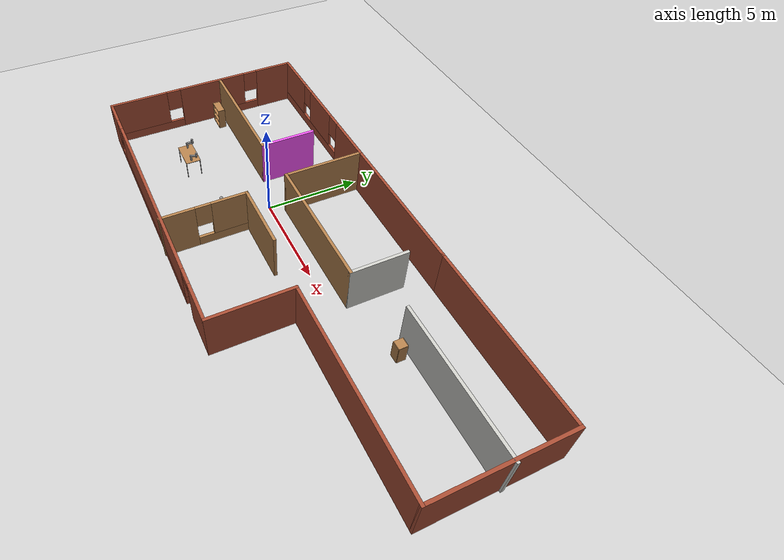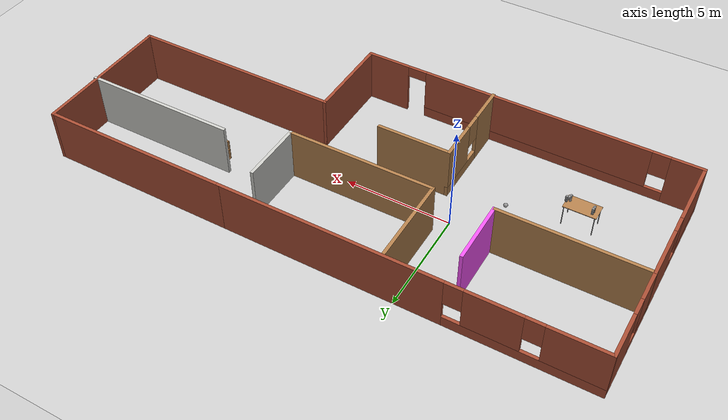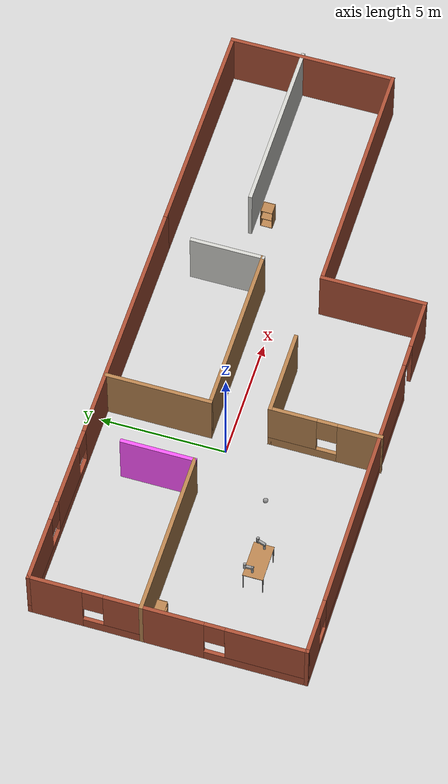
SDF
<sdf version="1.7">
 <world name="default">
  <light name="sun" type="directional">
   <pose>0 0 10 0 -0 0</pose>
   <diffuse>0.8 0.8 0.8 1</diffuse>
   <specular>0.2 0.2 0.2 1</specular>
   <attenuation>
    <range>1000</range>
    <constant>0.9</constant>
    <linear>0.01</linear>
    <quadratic>0.001</quadratic>
   </attenuation>
   <direction>-0.5 0.1 -0.9</direction>
   <spot><inner_angle>0</inner_angle><outer_angle>0</outer_angle><falloff>0</falloff></spot>
  </light>
  <model name="ground_plane">
   <static>1</static>
   <link name="link">
    <collision name="collision">
     <geometry><plane><normal>0 0 1</normal><size>100 100</size></plane></geometry>
     <surface>
      <contact><collide_bitmask>65535</collide_bitmask></contact>
      <friction><ode><mu>100</mu><mu2>50</mu2></ode></friction>
     </surface>
    </collision>
    <visual name="visual">
     <cast_shadows>0</cast_shadows>
     <geometry><plane><normal>0 0 1</normal><size>100 100</size></plane></geometry>
     <material>
      <script><uri>file://media/materials/scripts/gazebo.material</uri><name>Gazebo/Grey</name></script>
     </material>
    </visual>
   </link>
  </model>
  <gravity>0 0 -9.8</gravity>
  <magnetic_field>6e-06 2.3e-05 -4.2e-05</magnetic_field>
  <atmosphere type="adiabatic"/>
  <physics name="default_physics" default="0" type="ode">
   <max_step_size>0.001</max_step_size>
   <real_time_factor>1</real_time_factor>
   <real_time_update_rate>1000</real_time_update_rate>
  </physics>
  <scene><ambient>0.4 0.4 0.4 1</ambient><background>0.7 0.7 0.7 1</background><shadows>1</shadows></scene>
  <spherical_coordinates>
   <surface_model>EARTH_WGS84</surface_model>
   <latitude_deg>0</latitude_deg>
   <longitude_deg>0</longitude_deg>
   <elevation>0</elevation>
   <heading_deg>0</heading_deg>
  </spherical_coordinates>
  <model name="homeSmall_0">
   <pose>4.19429 -0.440898 0 0 -0 0</pose>
   <link name="Wall_24">
    <pose>-12.893 -2.14873 0 0 0 -1.5708</pose>
    <visual name="Wall_24_Visual_0">
     <pose>-2.00535 0 1.25 0 -0 0</pose>
     <geometry><box><size>2.4893 0.15 2.5</size></box></geometry>
     <material>
      <script><uri>file://media/materials/scripts/gazebo.material</uri><name>Gazebo/Bricks</name></script>
      <ambient>1 1 1 1</ambient>
     </material>
     <meta><layer>0</layer></meta>
    </visual>
    <collision name="Wall_24_Collision_0">
     <geometry><box><size>2.4893 0.15 2.5</size></box></geometry>
     <pose>-2.00535 0 1.25 0 -0 0</pose>
    </collision>
    <visual name="Wall_24_Visual_1">
     <pose>1.24465 0 0.25 0 -0 0</pose>
     <geometry><box><size>4.0107 0.15 0.5</size></box></geometry>
     <material>
      <script><uri>file://media/materials/scripts/gazebo.material</uri><name>Gazebo/Bricks</name></script>
      <ambient>1 1 1 1</ambient>
     </material>
     <meta><layer>0</layer></meta>
    </visual>
    <collision name="Wall_24_Collision_1">
     <geometry><box><size>4.0107 0.15 0.5</size></box></geometry>
     <pose>1.24465 0 0.25 0 -0 0</pose>
    </collision>
    <visual name="Wall_24_Visual_2">
     <pose>1.64465 0 1.5 0 -0 0</pose>
     <geometry><box><size>3.2107 0.15 2</size></box></geometry>
     <material>
      <script><uri>file://media/materials/scripts/gazebo.material</uri><name>Gazebo/Bricks</name></script>
      <ambient>1 1 1 1</ambient>
     </material>
     <meta><layer>0</layer></meta>
    </visual>
    <collision name="Wall_24_Collision_2">
     <geometry><box><size>3.2107 0.15 2</size></box></geometry>
     <pose>1.64465 0 1.5 0 -0 0</pose>
    </collision>
    <visual name="Wall_24_Visual_3">
     <pose>-0.360699 0 1.9 0 -0 0</pose>
     <geometry><box><size>0.8 0.15 1.2</size></box></geometry>
     <material>
      <script><uri>file://media/materials/scripts/gazebo.material</uri><name>Gazebo/Bricks</name></script>
      <ambient>1 1 1 1</ambient>
     </material>
     <meta><layer>0</layer></meta>
    </visual>
    <collision name="Wall_24_Collision_3">
     <geometry><box><size>0.8 0.15 1.2</size></box></geometry>
     <pose>-0.360699 0 1.9 0 -0 0</pose>
    </collision>
   </link>
   <link name="Wall_25">
    <pose>-4.96802 -5.32373 0 0 -0 0</pose>
    <visual name="Wall_25_Visual_0">
     <pose>-7.24785 0 1.25 0 -0 0</pose>
     <geometry><box><size>1.50429 0.15 2.5</size></box></geometry>
     <material>
      <script><uri>file://media/materials/scripts/gazebo.material</uri><name>Gazebo/Bricks</name></script>
      <ambient>1 1 1 1</ambient>
     </material>
     <meta><layer>0</layer></meta>
    </visual>
    <collision name="Wall_25_Collision_0">
     <geometry><box><size>1.50429 0.15 2.5</size></box></geometry>
     <pose>-7.24785 0 1.25 0 -0 0</pose>
    </collision>
    <visual name="Wall_25_Visual_1">
     <pose>6.94646 0 1.25 0 -0 0</pose>
     <geometry><box><size>2.10707 0.15 2.5</size></box></geometry>
     <material>
      <script><uri>file://media/materials/scripts/gazebo.material</uri><name>Gazebo/Bricks</name></script>
      <ambient>1 1 1 1</ambient>
     </material>
     <meta><layer>0</layer></meta>
    </visual>
    <collision name="Wall_25_Collision_1">
     <geometry><box><size>2.10707 0.15 2.5</size></box></geometry>
     <pose>6.94646 0 1.25 0 -0 0</pose>
    </collision>
    <visual name="Wall_25_Visual_2">
     <pose>-0.751388 0 0.25 0 -0 0</pose>
     <geometry><box><size>11.4886 0.15 0.5</size></box></geometry>
     <material>
      <script><uri>file://media/materials/scripts/gazebo.material</uri><name>Gazebo/Bricks</name></script>
      <ambient>1 1 1 1</ambient>
     </material>
     <meta><layer>0</layer></meta>
    </visual>
    <collision name="Wall_25_Collision_2">
     <geometry><box><size>11.4886 0.15 0.5</size></box></geometry>
     <pose>-0.751388 0 0.25 0 -0 0</pose>
    </collision>
    <visual name="Wall_25_Visual_3">
     <pose>-0.351388 0 1.5 0 -0 0</pose>
     <geometry><box><size>10.6886 0.15 2</size></box></geometry>
     <material>
      <script><uri>file://media/materials/scripts/gazebo.material</uri><name>Gazebo/Bricks</name></script>
      <ambient>1 1 1 1</ambient>
     </material>
     <meta><layer>0</layer></meta>
    </visual>
    <collision name="Wall_25_Collision_3">
     <geometry><box><size>10.6886 0.15 2</size></box></geometry>
     <pose>-0.351388 0 1.5 0 -0 0</pose>
    </collision>
    <visual name="Wall_25_Visual_4">
     <pose>-6.0957 0 1.9 0 -0 0</pose>
     <geometry><box><size>0.8 0.15 1.2</size></box></geometry>
     <material>
      <script><uri>file://media/materials/scripts/gazebo.material</uri><name>Gazebo/Bricks</name></script>
      <ambient>1 1 1 1</ambient>
     </material>
     <meta><layer>0</layer></meta>
    </visual>
    <collision name="Wall_25_Collision_4">
     <geometry><box><size>0.8 0.15 1.2</size></box></geometry>
     <pose>-6.0957 0 1.9 0 -0 0</pose>
    </collision>
    <visual name="Wall_25_Visual_5">
     <pose>5.44293 0 2.25 0 -0 0</pose>
     <geometry><box><size>0.9 0.15 0.5</size></box></geometry>
     <material>
      <script><uri>file://media/materials/scripts/gazebo.material</uri><name>Gazebo/Bricks</name></script>
      <ambient>1 1 1 1</ambient>
     </material>
     <meta><layer>0</layer></meta>
    </visual>
    <collision name="Wall_25_Collision_5">
     <geometry><box><size>0.9 0.15 0.5</size></box></geometry>
     <pose>5.44293 0 2.25 0 -0 0</pose>
    </collision>
   </link>
   <link name="Wall_26">
    <collision name="Wall_26_Collision">
     <geometry><box><size>4.25 0.15 2.5</size></box></geometry>
     <pose>0 0 1.25 0 -0 0</pose>
    </collision>
    <visual name="Wall_26_Visual">
     <pose>0 0 1.25 0 -0 0</pose>
     <geometry><box><size>4.25 0.15 2.5</size></box></geometry>
     <material>
      <script><uri>file://media/materials/scripts/gazebo.material</uri><name>Gazebo/Bricks</name></script>
      <ambient>1 1 1 1</ambient>
     </material>
     <meta><layer>0</layer></meta>
    </visual>
    <pose>2.95698 -3.27373 0 0 -0 1.5708</pose>
   </link>
   <link name="Wall_27">
    <collision name="Wall_27_Collision">
     <geometry><box><size>10 0.15 2.5</size></box></geometry>
     <pose>0 0 1.25 0 -0 0</pose>
    </collision>
    <visual name="Wall_27_Visual">
     <pose>0 0 1.25 0 -0 0</pose>
     <geometry><box><size>10 0.15 2.5</size></box></geometry>
     <material>
      <script><uri>file://media/materials/scripts/gazebo.material</uri><name>Gazebo/Bricks</name></script>
      <ambient>1 1 1 1</ambient>
     </material>
     <meta><layer>0</layer></meta>
    </visual>
    <pose>7.88198 -1.22373 0 0 -0 0</pose>
   </link>
   <link name="Wall_28">
    <collision name="Wall_28_Collision">
     <geometry><box><size>6.75 0.15 2.5</size></box></geometry>
     <pose>0 0 1.25 0 -0 0</pose>
    </collision>
    <visual name="Wall_28_Visual">
     <pose>0 0 1.25 0 -0 0</pose>
     <geometry><box><size>6.75 0.15 2.5</size></box></geometry>
     <material>
      <script><uri>file://media/materials/scripts/gazebo.material</uri><name>Gazebo/Bricks</name></script>
      <ambient>1 1 1 1</ambient>
     </material>
     <meta><layer>0</layer></meta>
    </visual>
    <pose>12.807 2.07627 0 0 -0 1.5708</pose>
   </link>
   <link name="Wall_29">
    <collision name="Wall_29_Collision">
     <geometry><box><size>9 0.15 2.5</size></box></geometry>
     <pose>0 0 1.25 0 -0 0</pose>
    </collision>
    <visual name="Wall_29_Visual">
     <pose>0 0 1.25 0 -0 0</pose>
     <geometry><box><size>9 0.15 2.5</size></box></geometry>
     <material>
      <script><uri>file://media/materials/scripts/gazebo.material</uri><name>Gazebo/Bricks</name></script>
      <ambient>1 1 1 1</ambient>
     </material>
     <meta><layer>0</layer></meta>
    </visual>
    <pose>8.38198 5.37627 0 0 -0 3.14159</pose>
   </link>
   <link name="Wall_32">
    <pose>-4.46802 5.37627 0 0 -0 3.14159</pose>
    <visual name="Wall_32_Visual_0">
     <pose>-3.33323 0 1.25 0 -0 0</pose>
     <geometry><box><size>10.3335 0.15 2.5</size></box></geometry>
     <material>
      <script><uri>file://media/materials/scripts/gazebo.material</uri><name>Gazebo/Bricks</name></script>
      <ambient>1 1 1 1</ambient>
     </material>
     <meta><layer>0</layer></meta>
    </visual>
    <collision name="Wall_32_Collision_0">
     <geometry><box><size>10.3335 0.15 2.5</size></box></geometry>
     <pose>-3.33323 0 1.25 0 -0 0</pose>
    </collision>
    <visual name="Wall_32_Visual_1">
     <pose>5.16677 0 0.25 0 -0 0</pose>
     <geometry><box><size>6.66646 0.15 0.5</size></box></geometry>
     <material>
      <script><uri>file://media/materials/scripts/gazebo.material</uri><name>Gazebo/Bricks</name></script>
      <ambient>1 1 1 1</ambient>
     </material>
     <meta><layer>0</layer></meta>
    </visual>
    <collision name="Wall_32_Collision_1">
     <geometry><box><size>6.66646 0.15 0.5</size></box></geometry>
     <pose>5.16677 0 0.25 0 -0 0</pose>
    </collision>
    <visual name="Wall_32_Visual_2">
     <pose>3.85176 0 1.5 0 -0 0</pose>
     <geometry><box><size>2.43645 0.15 2</size></box></geometry>
     <material>
      <script><uri>file://media/materials/scripts/gazebo.material</uri><name>Gazebo/Bricks</name></script>
      <ambient>1 1 1 1</ambient>
     </material>
     <meta><layer>0</layer></meta>
    </visual>
    <collision name="Wall_32_Collision_2">
     <geometry><box><size>2.43645 0.15 2</size></box></geometry>
     <pose>3.85176 0 1.5 0 -0 0</pose>
    </collision>
    <visual name="Wall_32_Visual_3">
     <pose>7.18499 0 1.5 0 -0 0</pose>
     <geometry><box><size>2.63002 0.15 2</size></box></geometry>
     <material>
      <script><uri>file://media/materials/scripts/gazebo.material</uri><name>Gazebo/Bricks</name></script>
      <ambient>1 1 1 1</ambient>
     </material>
     <meta><layer>0</layer></meta>
    </visual>
    <collision name="Wall_32_Collision_3">
     <geometry><box><size>2.63002 0.15 2</size></box></geometry>
     <pose>7.18499 0 1.5 0 -0 0</pose>
    </collision>
    <visual name="Wall_32_Visual_4">
     <pose>2.23354 0 1.9 0 -0 0</pose>
     <geometry><box><size>0.8 0.15 1.2</size></box></geometry>
     <material>
      <script><uri>file://media/materials/scripts/gazebo.material</uri><name>Gazebo/Bricks</name></script>
      <ambient>1 1 1 1</ambient>
     </material>
     <meta><layer>0</layer></meta>
    </visual>
    <collision name="Wall_32_Collision_4">
     <geometry><box><size>0.8 0.15 1.2</size></box></geometry>
     <pose>2.23354 0 1.9 0 -0 0</pose>
    </collision>
    <visual name="Wall_32_Visual_5">
     <pose>5.46998 0 1.9 0 -0 0</pose>
     <geometry><box><size>0.8 0.15 1.2</size></box></geometry>
     <material>
      <script><uri>file://media/materials/scripts/gazebo.material</uri><name>Gazebo/Bricks</name></script>
      <ambient>1 1 1 1</ambient>
     </material>
     <meta><layer>0</layer></meta>
    </visual>
    <collision name="Wall_32_Collision_5">
     <geometry><box><size>0.8 0.15 1.2</size></box></geometry>
     <pose>5.46998 0 1.9 0 -0 0</pose>
    </collision>
   </link>
   <link name="Wall_33">
    <pose>-12.893 3.20127 0 0 0 -1.5708</pose>
    <visual name="Wall_33_Visual_0">
     <pose>-1.16974 0 1.25 0 -0 0</pose>
     <geometry><box><size>2.16053 0.15 2.5</size></box></geometry>
     <material>
      <script><uri>file://media/materials/scripts/gazebo.material</uri><name>Gazebo/Bricks</name></script>
      <ambient>1 1 1 1</ambient>
     </material>
     <meta><layer>0</layer></meta>
    </visual>
    <collision name="Wall_33_Collision_0">
     <geometry><box><size>2.16053 0.15 2.5</size></box></geometry>
     <pose>-1.16974 0 1.25 0 -0 0</pose>
    </collision>
    <visual name="Wall_33_Visual_1">
     <pose>1.08026 0 0.25 0 -0 0</pose>
     <geometry><box><size>2.33947 0.15 0.5</size></box></geometry>
     <material>
      <script><uri>file://media/materials/scripts/gazebo.material</uri><name>Gazebo/Bricks</name></script>
      <ambient>1 1 1 1</ambient>
     </material>
     <meta><layer>0</layer></meta>
    </visual>
    <collision name="Wall_33_Collision_1">
     <geometry><box><size>2.33947 0.15 0.5</size></box></geometry>
     <pose>1.08026 0 0.25 0 -0 0</pose>
    </collision>
    <visual name="Wall_33_Visual_2">
     <pose>1.48026 0 1.5 0 -0 0</pose>
     <geometry><box><size>1.53947 0.15 2</size></box></geometry>
     <material>
      <script><uri>file://media/materials/scripts/gazebo.material</uri><name>Gazebo/Bricks</name></script>
      <ambient>1 1 1 1</ambient>
     </material>
     <meta><layer>0</layer></meta>
    </visual>
    <collision name="Wall_33_Collision_2">
     <geometry><box><size>1.53947 0.15 2</size></box></geometry>
     <pose>1.48026 0 1.5 0 -0 0</pose>
    </collision>
    <visual name="Wall_33_Visual_3">
     <pose>0.310526 0 1.9 0 -0 0</pose>
     <geometry><box><size>0.8 0.15 1.2</size></box></geometry>
     <material>
      <script><uri>file://media/materials/scripts/gazebo.material</uri><name>Gazebo/Bricks</name></script>
      <ambient>1 1 1 1</ambient>
     </material>
     <meta><layer>0</layer></meta>
    </visual>
    <collision name="Wall_33_Collision_3">
     <geometry><box><size>0.8 0.15 1.2</size></box></geometry>
     <pose>0.310526 0 1.9 0 -0 0</pose>
    </collision>
   </link>
   <link name="Wall_34">
    <collision name="Wall_34_Collision">
     <geometry><box><size>6.75 0.15 2.5</size></box></geometry>
     <pose>0 0 1.25 0 -0 0</pose>
    </collision>
    <visual name="Wall_34_Visual">
     <pose>0 0 1.25 0 -0 0</pose>
     <geometry><box><size>6.75 0.15 2.5</size></box></geometry>
     <material>
      <script><uri>file://media/materials/scripts/gazebo.material</uri><name>Gazebo/Wood</name></script>
      <ambient>1 1 1 1</ambient>
     </material>
     <meta><layer>0</layer></meta>
    </visual>
    <pose>-9.59302 1.02627 0 0 -0 0</pose>
   </link>
   <link name="Wall_35">
    <collision name="Wall_35_Collision">
     <geometry><box><size>3 0.15 2.5</size></box></geometry>
     <pose>0 0 1.25 0 -0 0</pose>
    </collision>
    <visual name="Wall_35_Visual">
     <pose>0 0 1.25 0 -0 0</pose>
     <geometry><box><size>3 0.15 2.5</size></box></geometry>
     <material>
      <script><uri>file://media/materials/scripts/gazebo.material</uri><name>Gazebo/Grey</name></script>
      <ambient>1 0.333333 1 1</ambient>
     </material>
     <meta><layer>0</layer></meta>
    </visual>
    <pose>-6.29302 2.45127 0 0 -0 1.5708</pose>
   </link>
   <link name="Wall_37">
    <collision name="Wall_37_Collision">
     <geometry><box><size>4.25 0.15 2.5</size></box></geometry>
     <pose>0 0 1.25 0 -0 0</pose>
    </collision>
    <visual name="Wall_37_Visual">
     <pose>0 0 1.25 0 -0 0</pose>
     <geometry><box><size>4.25 0.15 2.5</size></box></geometry>
     <material>
      <script><uri>file://media/materials/scripts/gazebo.material</uri><name>Gazebo/Wood</name></script>
      <ambient>0.333333 0 1 1</ambient>
     </material>
     <meta><layer>0</layer></meta>
    </visual>
    <pose>-3.67618 3.26808 0 0 0 -1.5708</pose>
   </link>
   <link name="Wall_38">
    <collision name="Wall_38_Collision">
     <geometry><box><size>7 0.15 2.5</size></box></geometry>
     <pose>0 0 1.25 0 -0 0</pose>
    </collision>
    <visual name="Wall_38_Visual">
     <pose>0 0 1.25 0 -0 0</pose>
     <geometry><box><size>7 0.15 2.5</size></box></geometry>
     <material>
      <script><uri>file://media/materials/scripts/gazebo.material</uri><name>Gazebo/Wood</name></script>
      <ambient>0.333333 0 1 1</ambient>
     </material>
     <meta><layer>0</layer></meta>
    </visual>
    <pose>-0.25118 1.21808 0 0 -0 0</pose>
   </link>
   <link name="Wall_39">
    <collision name="Wall_39_Collision">
     <geometry><box><size>3 0.15 2.5</size></box></geometry>
     <pose>0 0 1.25 0 -0 0</pose>
    </collision>
    <visual name="Wall_39_Visual">
     <pose>0 0 1.25 0 -0 0</pose>
     <geometry><box><size>3 0.15 2.5</size></box></geometry>
     <material>
      <script><uri>file://media/materials/scripts/gazebo.material</uri><name>Gazebo/CeilingTiled</name></script>
      <ambient>1 1 1 1</ambient>
     </material>
     <meta><layer>0</layer></meta>
    </visual>
    <pose>3.17382 2.64308 0 0 -0 1.5708</pose>
   </link>
   <link name="Wall_41">
    <collision name="Wall_41_Collision">
     <geometry><box><size>7.25 0.15 2.5</size></box></geometry>
     <pose>0 0 1.25 0 -0 0</pose>
    </collision>
    <visual name="Wall_41_Visual">
     <pose>0 0 1.25 0 -0 0</pose>
     <geometry><box><size>7.25 0.15 2.5</size></box></geometry>
     <material>
      <script><uri>file://media/materials/scripts/gazebo.material</uri><name>Gazebo/CeilingTiled</name></script>
      <ambient>1 1 1 1</ambient>
     </material>
     <meta><layer>0</layer></meta>
    </visual>
    <pose>9.34302 2.50378 0 0 -0 3.14159</pose>
   </link>
   <link name="Wall_43">
    <pose>-3.28921 -3.20127 0 0 -0 1.5708</pose>
    <visual name="Wall_43_Visual_0">
     <pose>-1.35714 0 1.25 0 -0 0</pose>
     <geometry><box><size>1.78573 0.15 2.5</size></box></geometry>
     <material>
      <script><uri>file://media/materials/scripts/gazebo.material</uri><name>Gazebo/Wood</name></script>
      <ambient>1 1 1 1</ambient>
     </material>
     <meta><layer>0</layer></meta>
    </visual>
    <collision name="Wall_43_Collision_0">
     <geometry><box><size>1.78573 0.15 2.5</size></box></geometry>
     <pose>-1.35714 0 1.25 0 -0 0</pose>
    </collision>
    <visual name="Wall_43_Visual_1">
     <pose>0.892863 0 0.25 0 -0 0</pose>
     <geometry><box><size>2.71428 0.15 0.5</size></box></geometry>
     <material>
      <script><uri>file://media/materials/scripts/gazebo.material</uri><name>Gazebo/Wood</name></script>
      <ambient>1 1 1 1</ambient>
     </material>
     <meta><layer>0</layer></meta>
    </visual>
    <collision name="Wall_43_Collision_1">
     <geometry><box><size>2.71428 0.15 0.5</size></box></geometry>
     <pose>0.892863 0 0.25 0 -0 0</pose>
    </collision>
    <visual name="Wall_43_Visual_2">
     <pose>1.29286 0 1.5 0 -0 0</pose>
     <geometry><box><size>1.91427 0.15 2</size></box></geometry>
     <material>
      <script><uri>file://media/materials/scripts/gazebo.material</uri><name>Gazebo/Wood</name></script>
      <ambient>1 1 1 1</ambient>
     </material>
     <meta><layer>0</layer></meta>
    </visual>
    <collision name="Wall_43_Collision_2">
     <geometry><box><size>1.91427 0.15 2</size></box></geometry>
     <pose>1.29286 0 1.5 0 -0 0</pose>
    </collision>
    <visual name="Wall_43_Visual_3">
     <pose>-0.064275 0 1.9 0 -0 0</pose>
     <geometry><box><size>0.8 0.15 1.2</size></box></geometry>
     <material>
      <script><uri>file://media/materials/scripts/gazebo.material</uri><name>Gazebo/Wood</name></script>
      <ambient>1 1 1 1</ambient>
     </material>
     <meta><layer>0</layer></meta>
    </visual>
    <collision name="Wall_43_Collision_3">
     <geometry><box><size>0.8 0.15 1.2</size></box></geometry>
     <pose>-0.064275 0 1.9 0 -0 0</pose>
    </collision>
   </link>
   <link name="Wall_44">
    <collision name="Wall_44_Collision">
     <geometry><box><size>3.5 0.15 2.5</size></box></geometry>
     <pose>0 0 1.25 0 -0 0</pose>
    </collision>
    <visual name="Wall_44_Visual">
     <pose>0 0 1.25 0 -0 0</pose>
     <geometry><box><size>3.5 0.15 2.5</size></box></geometry>
     <material>
      <script><uri>file://media/materials/scripts/gazebo.material</uri><name>Gazebo/Wood</name></script>
      <ambient>1 1 1 1</ambient>
     </material>
     <meta><layer>0</layer></meta>
    </visual>
    <pose>-1.61421 -1.02627 0 0 -0 0</pose>
   </link>
   <static>1</static>
  </model>
  <model name="table">
   <static>1</static>
   <link name="link">
    <collision name="surface">
     <pose>0 0 1 0 -0 0</pose>
     <geometry><box><size>1.5 0.8 0.03</size></box></geometry>
     <surface><friction><ode><mu>0.6</mu><mu2>0.6</mu2></ode></friction></surface>
    </collision>
    <visual name="visual1">
     <pose>0 0 1 0 -0 0</pose>
     <geometry><box><size>1.5 0.8 0.03</size></box></geometry>
     <material>
      <script><uri>file://media/materials/scripts/gazebo.material</uri><name>Gazebo/Wood</name></script>
     </material>
    </visual>
    <collision name="front_left_leg">
     <pose>0.68 0.38 0.5 0 -0 0</pose>
     <geometry><cylinder><radius>0.02</radius><length>1</length></cylinder></geometry>
    </collision>
    <visual name="front_left_leg">
     <pose>0.68 0.38 0.5 0 -0 0</pose>
     <geometry><cylinder><radius>0.02</radius><length>1</length></cylinder></geometry>
     <material>
      <script><uri>file://media/materials/scripts/gazebo.material</uri><name>Gazebo/Grey</name></script>
     </material>
    </visual>
    <collision name="front_right_leg">
     <pose>0.68 -0.38 0.5 0 -0 0</pose>
     <geometry><cylinder><radius>0.02</radius><length>1</length></cylinder></geometry>
    </collision>
    <visual name="front_right_leg">
     <pose>0.68 -0.38 0.5 0 -0 0</pose>
     <geometry><cylinder><radius>0.02</radius><length>1</length></cylinder></geometry>
     <material>
      <script><uri>file://media/materials/scripts/gazebo.material</uri><name>Gazebo/Grey</name></script>
     </material>
    </visual>
    <collision name="back_right_leg">
     <pose>-0.68 -0.38 0.5 0 -0 0</pose>
     <geometry><cylinder><radius>0.02</radius><length>1</length></cylinder></geometry>
    </collision>
    <visual name="back_right_leg">
     <pose>-0.68 -0.38 0.5 0 -0 0</pose>
     <geometry><cylinder><radius>0.02</radius><length>1</length></cylinder></geometry>
     <material>
      <script><uri>file://media/materials/scripts/gazebo.material</uri><name>Gazebo/Grey</name></script>
     </material>
    </visual>
    <collision name="back_left_leg">
     <pose>-0.68 0.38 0.5 0 -0 0</pose>
     <geometry><cylinder><radius>0.02</radius><length>1</length></cylinder></geometry>
    </collision>
    <visual name="back_left_leg">
     <pose>-0.68 0.38 0.5 0 -0 0</pose>
     <geometry><cylinder><radius>0.02</radius><length>1</length></cylinder></geometry>
     <material>
      <script><uri>file://media/materials/scripts/gazebo.material</uri><name>Gazebo/Grey</name></script>
     </material>
    </visual>
   </link>
   <pose>-4.76531 -2.7237 0 0 -0 0</pose>
  </model>
  <model name="bookshelf">
   <static>1</static>
   <link name="link">
    <inertial><mass>1</mass></inertial>
    <collision name="back">
     <pose>0 0.005 0.6 0 -0 0</pose>
     <geometry><box><size>0.9 0.01 1.2</size></box></geometry>
    </collision>
    <visual name="visual1">
     <pose>0 0.005 0.6 0 -0 0</pose>
     <geometry><box><size>0.9 0.01 1.2</size></box></geometry>
     <material>
      <script><uri>file://media/materials/scripts/gazebo.material</uri><name>Gazebo/Wood</name></script>
     </material>
    </visual>
    <collision name="left_side">
     <pose>0.45 -0.195 0.6 0 -0 0</pose>
     <geometry><box><size>0.02 0.4 1.2</size></box></geometry>
    </collision>
    <visual name="visual2">
     <pose>0.45 -0.195 0.6 0 -0 0</pose>
     <geometry><box><size>0.02 0.4 1.2</size></box></geometry>
     <material>
      <script><uri>file://media/materials/scripts/gazebo.material</uri><name>Gazebo/Wood</name></script>
     </material>
    </visual>
    <collision name="right_side">
     <pose>-0.45 -0.195 0.6 0 -0 0</pose>
     <geometry><box><size>0.02 0.4 1.2</size></box></geometry>
    </collision>
    <visual name="visual3">
     <pose>-0.45 -0.195 0.6 0 -0 0</pose>
     <geometry><box><size>0.02 0.4 1.2</size></box></geometry>
     <material>
      <script><uri>file://media/materials/scripts/gazebo.material</uri><name>Gazebo/Wood</name></script>
     </material>
    </visual>
    <collision name="bottom">
     <pose>0 -0.195 0.03 0 -0 0</pose>
     <geometry><box><size>0.88 0.4 0.06</size></box></geometry>
    </collision>
    <visual name="visual4">
     <pose>0 -0.195 0.03 0 -0 0</pose>
     <geometry><box><size>0.88 0.4 0.06</size></box></geometry>
     <material>
      <script><uri>file://media/materials/scripts/gazebo.material</uri><name>Gazebo/Wood</name></script>
     </material>
    </visual>
    <collision name="top">
     <pose>0 -0.195 1.19 0 -0 0</pose>
     <geometry><box><size>0.88 0.4 0.02</size></box></geometry>
    </collision>
    <visual name="visual5">
     <pose>0 -0.195 1.19 0 -0 0</pose>
     <geometry><box><size>0.88 0.4 0.02</size></box></geometry>
     <material>
      <script><uri>file://media/materials/scripts/gazebo.material</uri><name>Gazebo/Wood</name></script>
     </material>
    </visual>
    <collision name="low_shelf">
     <pose>0 -0.195 0.43 0 -0 0</pose>
     <geometry><box><size>0.88 0.4 0.02</size></box></geometry>
    </collision>
    <visual name="visual6">
     <pose>0 -0.195 0.43 0 -0 0</pose>
     <geometry><box><size>0.88 0.4 0.02</size></box></geometry>
     <material>
      <script><uri>file://media/materials/scripts/gazebo.material</uri><name>Gazebo/Wood</name></script>
     </material>
    </visual>
    <collision name="high_shelf">
     <pose>0 -0.195 0.8 0 -0 0</pose>
     <geometry><box><size>0.88 0.4 0.02</size></box></geometry>
    </collision>
    <visual name="visual7">
     <pose>0 -0.195 0.8 0 -0 0</pose>
     <geometry><box><size>0.88 0.4 0.02</size></box></geometry>
     <material>
      <script><uri>file://media/materials/scripts/gazebo.material</uri><name>Gazebo/Wood</name></script>
     </material>
    </visual>
   </link>
   <pose>-7.97047 0.341284 0 0 -0 0</pose>
  </model>
  <model name="cabinet">
   <static>1</static>
   <link name="cabinet_bottom_plate">
    <inertial>
     <pose>0 0 -1 0 -0 0</pose>
     <inertia><ixx>2.05</ixx><ixy>0</ixy><ixz>0</ixz><iyy>2.05</iyy><iyz>0</iyz><izz>2.05</izz></inertia>
     <mass>25</mass>
    </inertial>
    <collision name="cabinet_bottom_plate_geom">
     <pose>0 0 0.01 0 -0 0</pose>
     <geometry><box><size>0.45 0.45 0.02</size></box></geometry>
    </collision>
    <visual name="cabinet_bottom_plate_geom_visual">
     <pose>0 0 0.01 0 -0 0</pose>
     <geometry><box><size>0.45 0.45 0.02</size></box></geometry>
     <material>
      <script><uri>file://media/materials/scripts/gazebo.material</uri><name>Gazebo/Wood</name></script>
     </material>
    </visual>
    <collision name="cabinet_bottom_plate_geom_cabinet_back_plate">
     <pose>0.235 0 0.51 0 -0 0</pose>
     <geometry><box><size>0.02 0.45 1.02</size></box></geometry>
    </collision>
    <visual name="cabinet_bottom_plate_geom_cabinet_back_plate_visual">
     <pose>0.235 0 0.51 0 -0 0</pose>
     <geometry><box><size>0.02 0.45 1.02</size></box></geometry>
     <material>
      <script><uri>file://media/materials/scripts/gazebo.material</uri><name>Gazebo/Wood</name></script>
     </material>
    </visual>
    <collision name="cabinet_bottom_plate_geom_cabinet_left_plate">
     <pose>0 0.235 0.51 0 -0 0</pose>
     <geometry><box><size>0.45 0.02 1.02</size></box></geometry>
    </collision>
    <visual name="cabinet_bottom_plate_geom_cabinet_left_plate_visual">
     <pose>0 0.235 0.51 0 -0 0</pose>
     <geometry><box><size>0.45 0.02 1.02</size></box></geometry>
     <material>
      <script><uri>file://media/materials/scripts/gazebo.material</uri><name>Gazebo/Wood</name></script>
     </material>
    </visual>
    <collision name="cabinet_bottom_plate_geom_cabinet_middle_plate">
     <pose>0 0 0.51 0 -0 0</pose>
     <geometry><box><size>0.45 0.45 0.02</size></box></geometry>
    </collision>
    <visual name="cabinet_bottom_plate_geom_cabinet_middle_plate_visual">
     <pose>0 0 0.51 0 -0 0</pose>
     <geometry><box><size>0.45 0.45 0.02</size></box></geometry>
     <material>
      <script><uri>file://media/materials/scripts/gazebo.material</uri><name>Gazebo/Wood</name></script>
     </material>
    </visual>
    <collision name="cabinet_bottom_plate_geom_cabinet_right_plate">
     <pose>0 -0.235 0.51 0 -0 0</pose>
     <geometry><box><size>0.45 0.02 1.02</size></box></geometry>
    </collision>
    <visual name="cabinet_bottom_plate_geom_cabinet_right_plate_visual">
     <pose>0 -0.235 0.51 0 -0 0</pose>
     <geometry><box><size>0.45 0.02 1.02</size></box></geometry>
     <material>
      <script><uri>file://media/materials/scripts/gazebo.material</uri><name>Gazebo/Wood</name></script>
     </material>
    </visual>
    <collision name="cabinet_bottom_plate_geom_cabinet_top_plate">
     <pose>0 0 1.01 0 -0 0</pose>
     <geometry><box><size>0.45 0.45 0.02</size></box></geometry>
    </collision>
    <visual name="cabinet_bottom_plate_geom_cabinet_top_plate_visual">
     <pose>0 0 1.01 0 -0 0</pose>
     <geometry><box><size>0.45 0.45 0.02</size></box></geometry>
     <material>
      <script><uri>file://media/materials/scripts/gazebo.material</uri><name>Gazebo/Wood</name></script>
     </material>
    </visual>
   </link>
   <pose>10.6169 1.53604 0 0 -0 0</pose>
  </model>
  <model name="pickNPlace">
   <link name="link_0">
    <pose>-4.17687 -2.82392 1.15676 0 -0 0</pose>
    <inertial>
     <mass>1</mass>
     <inertia><ixx>0.145833</ixx><ixy>0</ixy><ixz>0</ixz><iyy>0.145833</iyy><iyz>0</iyz><izz>0.125</izz></inertia>
    </inertial>
    <visual name="visual">
     <geometry><cylinder><radius>0.05</radius><length>0.25</length></cylinder></geometry>
     <material>
      <lighting>1</lighting>
      <script><uri>file://media/materials/scripts/gazebo.material</uri><name>Gazebo/Grey</name></script>
      <shader type="pixel"><normal_map>__default__</normal_map></shader>
      <ambient>0.3 0.3 0.3 1</ambient>
      <diffuse>0.7 0.7 0.7 1</diffuse>
      <specular>0.01 0.01 0.01 1</specular>
      <emissive>0 0 0 1</emissive>
     </material>
    </visual>
    <collision name="collision">
     <geometry><cylinder><radius>0.05</radius><length>0.25</length></cylinder></geometry>
     <surface>
      <friction>
       <ode><mu>1</mu><mu2>1</mu2><fdir1>0 0 0</fdir1><slip1>0</slip1><slip2>0</slip2></ode>
       <torsional>
        <coefficient>1</coefficient>
        <patch_radius>0</patch_radius>
        <surface_radius>0</surface_radius>
        <use_patch_radius>1</use_patch_radius>
        <ode><slip>0</slip></ode>
       </torsional>
      </friction>
      <bounce><restitution_coefficient>0</restitution_coefficient><threshold>1e+06</threshold></bounce>
      <contact>
       <collide_without_contact>0</collide_without_contact>
       <collide_without_contact_bitmask>1</collide_without_contact_bitmask>
       <collide_bitmask>1</collide_bitmask>
       <ode>
        <soft_cfm>0</soft_cfm>
        <soft_erp>0.2</soft_erp>
        <kp>1e+13</kp>
        <kd>1</kd>
        <max_vel>0.01</max_vel>
        <min_depth>0</min_depth>
       </ode>
       <bullet>
        <split_impulse>1</split_impulse>
        <split_impulse_penetration_threshold>-0.01</split_impulse_penetration_threshold>
        <soft_cfm>0</soft_cfm>
        <soft_erp>0.2</soft_erp>
        <kp>1e+13</kp>
        <kd>1</kd>
       </bullet>
      </contact>
     </surface>
    </collision>
   </link>
   <link name="link_1">
    <pose>-4.17687 -2.82392 1.33189 0 -0 0</pose>
    <inertial>
     <mass>1</mass>
     <inertia><ixx>0.145833</ixx><ixy>0</ixy><ixz>0</ixz><iyy>0.145833</iyy><iyz>0</iyz><izz>0.125</izz></inertia>
    </inertial>
    <visual name="visual">
     <geometry><cylinder><radius>0.05</radius><length>0.1</length></cylinder></geometry>
     <material>
      <lighting>1</lighting>
      <script><uri>file://media/materials/scripts/gazebo.material</uri><name>Gazebo/Grey</name></script>
      <shader type="pixel"><normal_map>__default__</normal_map></shader>
      <ambient>0.3 0.3 0.3 1</ambient>
      <diffuse>0.7 0.7 0.7 1</diffuse>
      <specular>0.01 0.01 0.01 1</specular>
      <emissive>0 0 0 1</emissive>
     </material>
    </visual>
    <collision name="collision">
     <geometry><cylinder><radius>0.05</radius><length>0.1</length></cylinder></geometry>
     <surface>
      <friction>
       <ode><mu>1</mu><mu2>1</mu2><fdir1>0 0 0</fdir1><slip1>0</slip1><slip2>0</slip2></ode>
       <torsional>
        <coefficient>1</coefficient>
        <patch_radius>0</patch_radius>
        <surface_radius>0</surface_radius>
        <use_patch_radius>1</use_patch_radius>
        <ode><slip>0</slip></ode>
       </torsional>
      </friction>
      <bounce><restitution_coefficient>0</restitution_coefficient><threshold>1e+06</threshold></bounce>
      <contact>
       <collide_without_contact>0</collide_without_contact>
       <collide_without_contact_bitmask>1</collide_without_contact_bitmask>
       <collide_bitmask>1</collide_bitmask>
       <ode>
        <soft_cfm>0</soft_cfm>
        <soft_erp>0.2</soft_erp>
        <kp>1e+13</kp>
        <kd>1</kd>
        <max_vel>0.01</max_vel>
        <min_depth>0</min_depth>
       </ode>
       <bullet>
        <split_impulse>1</split_impulse>
        <split_impulse_penetration_threshold>-0.01</split_impulse_penetration_threshold>
        <soft_cfm>0</soft_cfm>
        <soft_erp>0.2</soft_erp>
        <kp>1e+13</kp>
        <kd>1</kd>
       </bullet>
      </contact>
     </surface>
    </collision>
   </link>
   <link name="link_2">
    <pose>-4.17687 -2.67392 1.33189 0 -0 0</pose>
    <inertial>
     <mass>1</mass>
     <inertia>
      <ixx>0.166667</ixx>
      <ixy>0</ixy>
      <ixz>0</ixz>
      <iyy>0.166667</iyy>
      <iyz>0</iyz>
      <izz>0.166667</izz>
     </inertia>
    </inertial>
    <gravity>0</gravity>
    <visual name="visual">
     <geometry><box><size>0.1 0.4 0.1</size></box></geometry>
     <material>
      <lighting>1</lighting>
      <script><uri>file://media/materials/scripts/gazebo.material</uri><name>Gazebo/Grey</name></script>
      <shader type="pixel"><normal_map>__default__</normal_map></shader>
      <ambient>0.3 0.3 0.3 1</ambient>
      <diffuse>0.7 0.7 0.7 1</diffuse>
      <specular>0.01 0.01 0.01 1</specular>
      <emissive>0 0 0 1</emissive>
     </material>
    </visual>
    <collision name="collision">
     <geometry><box><size>0.1 0.4 0.1</size></box></geometry>
     <surface>
      <friction>
       <ode><mu>1</mu><mu2>1</mu2><fdir1>0 0 0</fdir1><slip1>0</slip1><slip2>0</slip2></ode>
       <torsional>
        <coefficient>1</coefficient>
        <patch_radius>0</patch_radius>
        <surface_radius>0</surface_radius>
        <use_patch_radius>1</use_patch_radius>
        <ode><slip>0</slip></ode>
       </torsional>
      </friction>
      <bounce><restitution_coefficient>0</restitution_coefficient><threshold>1e+06</threshold></bounce>
      <contact>
       <collide_without_contact>0</collide_without_contact>
       <collide_without_contact_bitmask>1</collide_without_contact_bitmask>
       <collide_bitmask>1</collide_bitmask>
       <ode>
        <soft_cfm>0</soft_cfm>
        <soft_erp>0.2</soft_erp>
        <kp>1e+13</kp>
        <kd>1</kd>
        <max_vel>0.01</max_vel>
        <min_depth>0</min_depth>
       </ode>
       <bullet>
        <split_impulse>1</split_impulse>
        <split_impulse_penetration_threshold>-0.01</split_impulse_penetration_threshold>
        <soft_cfm>0</soft_cfm>
        <soft_erp>0.2</soft_erp>
        <kp>1e+13</kp>
        <kd>1</kd>
       </bullet>
      </contact>
     </surface>
    </collision>
   </link>
   <link name="link_3">
    <pose>-4.17687 -2.52394 1.37689 1.5707 -0 0</pose>
    <inertial>
     <mass>1</mass>
     <inertia>
      <ixx>0.166667</ixx>
      <ixy>0</ixy>
      <ixz>0</ixz>
      <iyy>0.166667</iyy>
      <iyz>0</iyz>
      <izz>0.166667</izz>
     </inertia>
    </inertial>
    <gravity>0</gravity>
    <visual name="visual">
     <geometry><box><size>0.1 0.3 0.1</size></box></geometry>
     <material>
      <lighting>1</lighting>
      <script><uri>file://media/materials/scripts/gazebo.material</uri><name>Gazebo/Grey</name></script>
      <shader type="pixel"><normal_map>__default__</normal_map></shader>
      <ambient>0.3 0.3 0.3 1</ambient>
      <diffuse>0.7 0.7 0.7 1</diffuse>
      <specular>0.01 0.01 0.01 1</specular>
      <emissive>0 0 0 1</emissive>
     </material>
    </visual>
    <collision name="collision">
     <geometry><box><size>0.1 0.3 0.1</size></box></geometry>
     <surface>
      <friction>
       <ode><mu>1</mu><mu2>1</mu2><fdir1>0 0 0</fdir1><slip1>0</slip1><slip2>0</slip2></ode>
       <torsional>
        <coefficient>1</coefficient>
        <patch_radius>0</patch_radius>
        <surface_radius>0</surface_radius>
        <use_patch_radius>1</use_patch_radius>
        <ode><slip>0</slip></ode>
       </torsional>
      </friction>
      <bounce><restitution_coefficient>0</restitution_coefficient><threshold>1e+06</threshold></bounce>
      <contact>
       <collide_without_contact>0</collide_without_contact>
       <collide_without_contact_bitmask>1</collide_without_contact_bitmask>
       <collide_bitmask>1</collide_bitmask>
       <ode>
        <soft_cfm>0</soft_cfm>
        <soft_erp>0.2</soft_erp>
        <kp>1e+13</kp>
        <kd>1</kd>
        <max_vel>0.01</max_vel>
        <min_depth>0</min_depth>
       </ode>
       <bullet>
        <split_impulse>1</split_impulse>
        <split_impulse_penetration_threshold>-0.01</split_impulse_penetration_threshold>
        <soft_cfm>0</soft_cfm>
        <soft_erp>0.2</soft_erp>
        <kp>1e+13</kp>
        <kd>1</kd>
       </bullet>
      </contact>
     </surface>
    </collision>
   </link>
   <joint name="link_0_JOINT_2" type="revolute">
    <parent>link_0</parent>
    <child>link_1</child>
    <axis>
     <xyz>1 0 0</xyz>
     <limit>
      <lower>-1.79769e+308</lower>
      <upper>1.79769e+308</upper>
      <effort>-1</effort>
      <velocity>-1</velocity>
     </limit>
     <dynamics>
      <spring_reference>0</spring_reference>
      <spring_stiffness>0</spring_stiffness>
      <damping>0</damping>
      <friction>0</friction>
     </dynamics>
    </axis>
    <physics>
     <ode><limit><cfm>0</cfm><erp>0.2</erp></limit><suspension><cfm>0</cfm><erp>0.2</erp></suspension></ode>
    </physics>
   </joint>
   <joint name="link_2_JOINT_4" type="fixed">
    <parent>link_1</parent>
    <child>link_2</child>
    <physics>
     <ode><limit><cfm>0</cfm><erp>0.2</erp></limit><suspension><cfm>0</cfm><erp>0.2</erp></suspension></ode>
    </physics>
   </joint>
   <joint name="link_2_JOINT_6" type="revolute">
    <parent>link_2</parent>
    <child>link_3</child>
    <axis>
     <xyz>1 0 0</xyz>
     <limit>
      <lower>-1.79769e+308</lower>
      <upper>1.79769e+308</upper>
      <effort>-1</effort>
      <velocity>-1</velocity>
     </limit>
     <dynamics>
      <spring_reference>0</spring_reference>
      <spring_stiffness>0</spring_stiffness>
      <damping>0</damping>
      <friction>0</friction>
     </dynamics>
    </axis>
    <physics>
     <ode><limit><cfm>0</cfm><erp>0.2</erp></limit><suspension><cfm>0</cfm><erp>0.2</erp></suspension></ode>
    </physics>
   </joint>
   <static>0</static>
   <pose>0.662472 -1.40447 -0.016914 -7.2e-05 -1.1e-05 -0.317448</pose>
  </model>
  <model name="pickNPlace_clone">
   <link name="link_0">
    <pose>-4.17687 -2.82392 1.15676 0 -0 0</pose>
    <inertial>
     <mass>1</mass>
     <inertia><ixx>0.145833</ixx><ixy>0</ixy><ixz>0</ixz><iyy>0.145833</iyy><iyz>0</iyz><izz>0.125</izz></inertia>
    </inertial>
    <visual name="visual">
     <geometry><cylinder><radius>0.05</radius><length>0.25</length></cylinder></geometry>
     <material>
      <lighting>1</lighting>
      <script><uri>file://media/materials/scripts/gazebo.material</uri><name>Gazebo/Grey</name></script>
      <shader type="pixel"><normal_map>__default__</normal_map></shader>
      <ambient>0.3 0.3 0.3 1</ambient>
      <diffuse>0.7 0.7 0.7 1</diffuse>
      <specular>0.01 0.01 0.01 1</specular>
      <emissive>0 0 0 1</emissive>
     </material>
    </visual>
    <collision name="collision">
     <geometry><cylinder><radius>0.05</radius><length>0.25</length></cylinder></geometry>
     <surface>
      <friction>
       <ode><mu>1</mu><mu2>1</mu2><fdir1>0 0 0</fdir1><slip1>0</slip1><slip2>0</slip2></ode>
       <torsional>
        <coefficient>1</coefficient>
        <patch_radius>0</patch_radius>
        <surface_radius>0</surface_radius>
        <use_patch_radius>1</use_patch_radius>
        <ode><slip>0</slip></ode>
       </torsional>
      </friction>
      <bounce><restitution_coefficient>0</restitution_coefficient><threshold>1e+06</threshold></bounce>
      <contact>
       <collide_without_contact>0</collide_without_contact>
       <collide_without_contact_bitmask>1</collide_without_contact_bitmask>
       <collide_bitmask>1</collide_bitmask>
       <ode>
        <soft_cfm>0</soft_cfm>
        <soft_erp>0.2</soft_erp>
        <kp>1e+13</kp>
        <kd>1</kd>
        <max_vel>0.01</max_vel>
        <min_depth>0</min_depth>
       </ode>
       <bullet>
        <split_impulse>1</split_impulse>
        <split_impulse_penetration_threshold>-0.01</split_impulse_penetration_threshold>
        <soft_cfm>0</soft_cfm>
        <soft_erp>0.2</soft_erp>
        <kp>1e+13</kp>
        <kd>1</kd>
       </bullet>
      </contact>
     </surface>
    </collision>
   </link>
   <link name="link_1">
    <pose>-4.17687 -2.82392 1.33189 0 -0 0</pose>
    <inertial>
     <mass>1</mass>
     <inertia><ixx>0.145833</ixx><ixy>0</ixy><ixz>0</ixz><iyy>0.145833</iyy><iyz>0</iyz><izz>0.125</izz></inertia>
    </inertial>
    <visual name="visual">
     <geometry><cylinder><radius>0.05</radius><length>0.1</length></cylinder></geometry>
     <material>
      <lighting>1</lighting>
      <script><uri>file://media/materials/scripts/gazebo.material</uri><name>Gazebo/Grey</name></script>
      <shader type="pixel"><normal_map>__default__</normal_map></shader>
      <ambient>0.3 0.3 0.3 1</ambient>
      <diffuse>0.7 0.7 0.7 1</diffuse>
      <specular>0.01 0.01 0.01 1</specular>
      <emissive>0 0 0 1</emissive>
     </material>
    </visual>
    <collision name="collision">
     <geometry><cylinder><radius>0.05</radius><length>0.1</length></cylinder></geometry>
     <surface>
      <friction>
       <ode><mu>1</mu><mu2>1</mu2><fdir1>0 0 0</fdir1><slip1>0</slip1><slip2>0</slip2></ode>
       <torsional>
        <coefficient>1</coefficient>
        <patch_radius>0</patch_radius>
        <surface_radius>0</surface_radius>
        <use_patch_radius>1</use_patch_radius>
        <ode><slip>0</slip></ode>
       </torsional>
      </friction>
      <bounce><restitution_coefficient>0</restitution_coefficient><threshold>1e+06</threshold></bounce>
      <contact>
       <collide_without_contact>0</collide_without_contact>
       <collide_without_contact_bitmask>1</collide_without_contact_bitmask>
       <collide_bitmask>1</collide_bitmask>
       <ode>
        <soft_cfm>0</soft_cfm>
        <soft_erp>0.2</soft_erp>
        <kp>1e+13</kp>
        <kd>1</kd>
        <max_vel>0.01</max_vel>
        <min_depth>0</min_depth>
       </ode>
       <bullet>
        <split_impulse>1</split_impulse>
        <split_impulse_penetration_threshold>-0.01</split_impulse_penetration_threshold>
        <soft_cfm>0</soft_cfm>
        <soft_erp>0.2</soft_erp>
        <kp>1e+13</kp>
        <kd>1</kd>
       </bullet>
      </contact>
     </surface>
    </collision>
   </link>
   <link name="link_2">
    <pose>-4.17687 -2.67392 1.33189 0 -0 0</pose>
    <inertial>
     <mass>1</mass>
     <inertia>
      <ixx>0.166667</ixx>
      <ixy>0</ixy>
      <ixz>0</ixz>
      <iyy>0.166667</iyy>
      <iyz>0</iyz>
      <izz>0.166667</izz>
     </inertia>
    </inertial>
    <gravity>0</gravity>
    <visual name="visual">
     <geometry><box><size>0.1 0.4 0.1</size></box></geometry>
     <material>
      <lighting>1</lighting>
      <script><uri>file://media/materials/scripts/gazebo.material</uri><name>Gazebo/Grey</name></script>
      <shader type="pixel"><normal_map>__default__</normal_map></shader>
      <ambient>0.3 0.3 0.3 1</ambient>
      <diffuse>0.7 0.7 0.7 1</diffuse>
      <specular>0.01 0.01 0.01 1</specular>
      <emissive>0 0 0 1</emissive>
     </material>
    </visual>
    <collision name="collision">
     <geometry><box><size>0.1 0.4 0.1</size></box></geometry>
     <surface>
      <friction>
       <ode><mu>1</mu><mu2>1</mu2><fdir1>0 0 0</fdir1><slip1>0</slip1><slip2>0</slip2></ode>
       <torsional>
        <coefficient>1</coefficient>
        <patch_radius>0</patch_radius>
        <surface_radius>0</surface_radius>
        <use_patch_radius>1</use_patch_radius>
        <ode><slip>0</slip></ode>
       </torsional>
      </friction>
      <bounce><restitution_coefficient>0</restitution_coefficient><threshold>1e+06</threshold></bounce>
      <contact>
       <collide_without_contact>0</collide_without_contact>
       <collide_without_contact_bitmask>1</collide_without_contact_bitmask>
       <collide_bitmask>1</collide_bitmask>
       <ode>
        <soft_cfm>0</soft_cfm>
        <soft_erp>0.2</soft_erp>
        <kp>1e+13</kp>
        <kd>1</kd>
        <max_vel>0.01</max_vel>
        <min_depth>0</min_depth>
       </ode>
       <bullet>
        <split_impulse>1</split_impulse>
        <split_impulse_penetration_threshold>-0.01</split_impulse_penetration_threshold>
        <soft_cfm>0</soft_cfm>
        <soft_erp>0.2</soft_erp>
        <kp>1e+13</kp>
        <kd>1</kd>
       </bullet>
      </contact>
     </surface>
    </collision>
   </link>
   <link name="link_3">
    <pose>-4.17687 -2.52394 1.37689 1.5707 -0 0</pose>
    <inertial>
     <mass>1</mass>
     <inertia>
      <ixx>0.166667</ixx>
      <ixy>0</ixy>
      <ixz>0</ixz>
      <iyy>0.166667</iyy>
      <iyz>0</iyz>
      <izz>0.166667</izz>
     </inertia>
    </inertial>
    <gravity>0</gravity>
    <visual name="visual">
     <geometry><box><size>0.1 0.3 0.1</size></box></geometry>
     <material>
      <lighting>1</lighting>
      <script><uri>file://media/materials/scripts/gazebo.material</uri><name>Gazebo/Grey</name></script>
      <shader type="pixel"><normal_map>__default__</normal_map></shader>
      <ambient>0.3 0.3 0.3 1</ambient>
      <diffuse>0.7 0.7 0.7 1</diffuse>
      <specular>0.01 0.01 0.01 1</specular>
      <emissive>0 0 0 1</emissive>
     </material>
    </visual>
    <collision name="collision">
     <geometry><box><size>0.1 0.3 0.1</size></box></geometry>
     <surface>
      <friction>
       <ode><mu>1</mu><mu2>1</mu2><fdir1>0 0 0</fdir1><slip1>0</slip1><slip2>0</slip2></ode>
       <torsional>
        <coefficient>1</coefficient>
        <patch_radius>0</patch_radius>
        <surface_radius>0</surface_radius>
        <use_patch_radius>1</use_patch_radius>
        <ode><slip>0</slip></ode>
       </torsional>
      </friction>
      <bounce><restitution_coefficient>0</restitution_coefficient><threshold>1e+06</threshold></bounce>
      <contact>
       <collide_without_contact>0</collide_without_contact>
       <collide_without_contact_bitmask>1</collide_without_contact_bitmask>
       <collide_bitmask>1</collide_bitmask>
       <ode>
        <soft_cfm>0</soft_cfm>
        <soft_erp>0.2</soft_erp>
        <kp>1e+13</kp>
        <kd>1</kd>
        <max_vel>0.01</max_vel>
        <min_depth>0</min_depth>
       </ode>
       <bullet>
        <split_impulse>1</split_impulse>
        <split_impulse_penetration_threshold>-0.01</split_impulse_penetration_threshold>
        <soft_cfm>0</soft_cfm>
        <soft_erp>0.2</soft_erp>
        <kp>1e+13</kp>
        <kd>1</kd>
       </bullet>
      </contact>
     </surface>
    </collision>
   </link>
   <joint name="link_0_JOINT_2" type="revolute">
    <parent>link_0</parent>
    <child>link_1</child>
    <axis>
     <xyz>1 0 0</xyz>
     <limit>
      <lower>-1.79769e+308</lower>
      <upper>1.79769e+308</upper>
      <effort>-1</effort>
      <velocity>-1</velocity>
     </limit>
     <dynamics>
      <spring_reference>0</spring_reference>
      <spring_stiffness>0</spring_stiffness>
      <damping>0</damping>
      <friction>0</friction>
     </dynamics>
    </axis>
    <physics>
     <ode><limit><cfm>0</cfm><erp>0.2</erp></limit><suspension><cfm>0</cfm><erp>0.2</erp></suspension></ode>
    </physics>
   </joint>
   <joint name="link_2_JOINT_4" type="fixed">
    <parent>link_1</parent>
    <child>link_2</child>
    <physics>
     <ode><limit><cfm>0</cfm><erp>0.2</erp></limit><suspension><cfm>0</cfm><erp>0.2</erp></suspension></ode>
    </physics>
   </joint>
   <joint name="link_2_JOINT_6" type="revolute">
    <parent>link_2</parent>
    <child>link_3</child>
    <axis>
     <xyz>1 0 0</xyz>
     <limit>
      <lower>-1.79769e+308</lower>
      <upper>1.79769e+308</upper>
      <effort>-1</effort>
      <velocity>-1</velocity>
     </limit>
     <dynamics>
      <spring_reference>0</spring_reference>
      <spring_stiffness>0</spring_stiffness>
      <damping>0</damping>
      <friction>0</friction>
     </dynamics>
    </axis>
    <physics>
     <ode><limit><cfm>0</cfm><erp>0.2</erp></limit><suspension><cfm>0</cfm><erp>0.2</erp></suspension></ode>
    </physics>
   </joint>
   <static>0</static>
   <pose>-1.30162 0.449424 -0.01656 -1.1e-05 -5.5e-05 0.066405</pose>
  </model>
  <model name="my_ball_0">
   <link name="link_1">
    <inertial>
     <mass>1</mass>
     <inertia><ixx>0.1</ixx><ixy>0</ixy><ixz>0</ixz><iyy>0.1</iyy><iyz>0</iyz><izz>0.1</izz></inertia>
    </inertial>
    <visual name="visual">
     <geometry><sphere><radius>0.1</radius></sphere></geometry>
     <material>
      <lighting>1</lighting>
      <script><uri>file://media/materials/scripts/gazebo.material</uri><name>Gazebo/Grey</name></script>
      <shader type="pixel"><normal_map>__default__</normal_map></shader>
      <ambient>1 1 1 1</ambient>
      <diffuse>1 1 1 1</diffuse>
      <specular>1 1 1 1</specular>
      <emissive>1 1 1 1</emissive>
     </material>
    </visual>
    <collision name="collision">
     <geometry><sphere><radius>0.1</radius></sphere></geometry>
     <surface>
      <friction>
       <ode><mu>1</mu><mu2>1</mu2><fdir1>0 0 0</fdir1><slip1>0</slip1><slip2>0</slip2></ode>
       <torsional>
        <coefficient>1</coefficient>
        <patch_radius>0</patch_radius>
        <surface_radius>0</surface_radius>
        <use_patch_radius>1</use_patch_radius>
        <ode><slip>0</slip></ode>
       </torsional>
      </friction>
      <bounce><restitution_coefficient>0</restitution_coefficient><threshold>1e+06</threshold></bounce>
      <contact>
       <collide_without_contact>0</collide_without_contact>
       <collide_without_contact_bitmask>1</collide_without_contact_bitmask>
       <collide_bitmask>1</collide_bitmask>
       <ode>
        <soft_cfm>0</soft_cfm>
        <soft_erp>0.2</soft_erp>
        <kp>1e+13</kp>
        <kd>1</kd>
        <max_vel>0.01</max_vel>
        <min_depth>0</min_depth>
       </ode>
       <bullet>
        <split_impulse>1</split_impulse>
        <split_impulse_penetration_threshold>-0.01</split_impulse_penetration_threshold>
        <soft_cfm>0</soft_cfm>
        <soft_erp>0.2</soft_erp>
        <kp>1e+13</kp>
        <kd>1</kd>
       </bullet>
      </contact>
     </surface>
    </collision>
   </link>
   <static>0</static>
   <pose>-1.65461 -2.06913 0.1 0 -0 0</pose>
  </model>
 </world>
</sdf>
